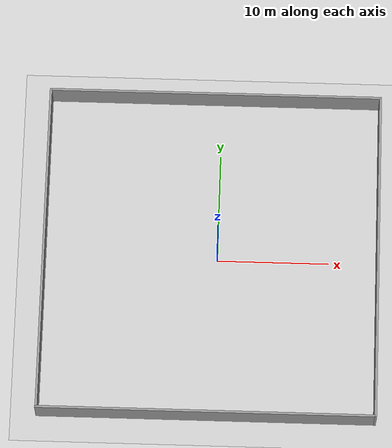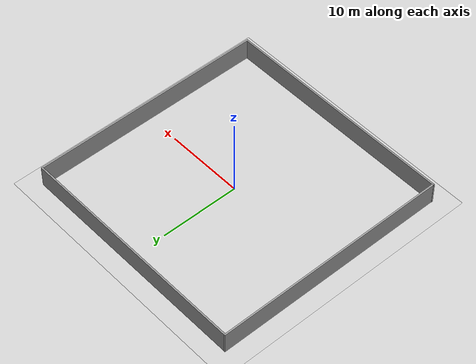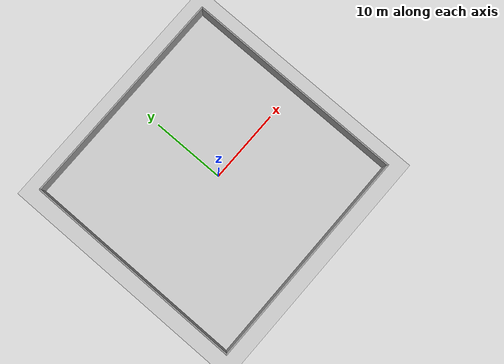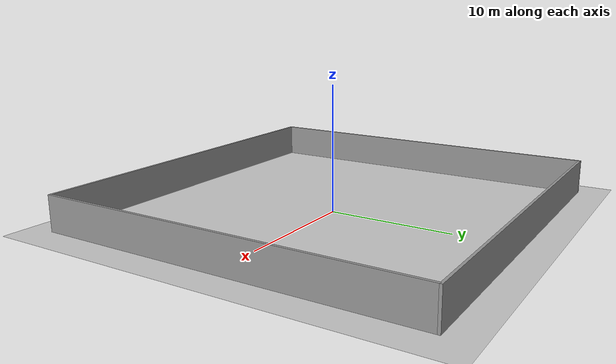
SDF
<sdf version="1.6">
 <world name="default">
  <plugin name="ActorPosePlugin" filename="libActorPosePlugin.so"/>
  <model name="ground_plane">
   <static>1</static>
   <link name="link">
    <collision name="collision">
     <geometry><plane><normal>0 0 1</normal><size>100 100</size></plane></geometry>
     <surface>
      <contact><collide_bitmask>65535</collide_bitmask></contact>
      <friction><ode><mu>100</mu><mu2>50</mu2></ode></friction>
     </surface>
    </collision>
    <visual name="visual">
     <cast_shadows>0</cast_shadows>
     <geometry><plane><normal>0 0 1</normal><size>100 100</size></plane></geometry>
     <material>
      <script><uri>file://media/materials/scripts/gazebo.material</uri><name>Gazebo/Grey</name></script>
     </material>
    </visual>
   </link>
  </model>
  <light name="sun" type="directional">
   <pose>0 0 10 0 -0 0</pose>
   <diffuse>0.8 0.8 0.8 1</diffuse>
   <specular>0.2 0.2 0.2 1</specular>
   <attenuation>
    <range>1000</range>
    <constant>0.9</constant>
    <linear>0.01</linear>
    <quadratic>0.001</quadratic>
   </attenuation>
   <direction>-0.5 0.1 -0.9</direction>
  </light>
  <model name="grey_wall_1">
   <pose>-15.2259 -14.3091 0 0 -0 0</pose>
   <static>1</static>
   <link name="link">
    <pose>14.5 -0.5 1.4 0 -0 0</pose>
    <collision name="collision"><geometry><box><size>30 0.2 2.8</size></box></geometry></collision>
    <visual name="visual">
     <cast_shadows>0</cast_shadows>
     <geometry><box><size>30 0.2 2.8</size></box></geometry>
     <material>
      <script>
       <uri>model://grey_wall/materials/scripts</uri>
       <uri>model://grey_wall/materials/textures</uri>
       <name>vrc/grey_wall</name>
      </script>
     </material>
    </visual>
   </link>
  </model>
  <model name="grey_wall_2">
   <pose>-15.0916 -14.2723 0 0 -0 0</pose>
   <static>1</static>
   <link name="link">
    <pose>-0.5 14.5 1.4 0 -0 1.57</pose>
    <collision name="collision"><geometry><box><size>30 0.2 2.8</size></box></geometry></collision>
    <visual name="visual">
     <cast_shadows>0</cast_shadows>
     <geometry><box><size>30 0.2 2.8</size></box></geometry>
     <material>
      <script>
       <uri>model://grey_wall/materials/scripts</uri>
       <uri>model://grey_wall/materials/textures</uri>
       <name>vrc/grey_wall</name>
      </script>
     </material>
    </visual>
   </link>
  </model>
  <model name="grey_wall_3">
   <pose>-15.0294 -14.3759 0 0 -0 0</pose>
   <static>1</static>
   <link name="link">
    <pose>14.5 29.5 1.4 0 -0 0</pose>
    <collision name="collision"><geometry><box><size>30 0.2 2.8</size></box></geometry></collision>
    <visual name="visual">
     <cast_shadows>0</cast_shadows>
     <geometry><box><size>30 0.2 2.8</size></box></geometry>
     <material>
      <script>
       <uri>model://grey_wall/materials/scripts</uri>
       <uri>model://grey_wall/materials/textures</uri>
       <name>vrc/grey_wall</name>
      </script>
     </material>
    </visual>
   </link>
  </model>
  <model name="grey_wall_4">
   <pose>-15.1447 -14.4099 0 0 -0 0</pose>
   <static>1</static>
   <link name="link">
    <pose>29.5 14.5 1.4 0 -0 1.57</pose>
    <collision name="collision"><geometry><box><size>30 0.2 2.8</size></box></geometry></collision>
    <visual name="visual">
     <cast_shadows>0</cast_shadows>
     <geometry><box><size>30 0.2 2.8</size></box></geometry>
     <material>
      <script>
       <uri>model://grey_wall/materials/scripts</uri>
       <uri>model://grey_wall/materials/textures</uri>
       <name>vrc/grey_wall</name>
      </script>
     </material>
    </visual>
   </link>
  </model>
  <gravity>0 0 -9.8</gravity>
  <magnetic_field>6e-06 2.3e-05 -4.2e-05</magnetic_field>
  <atmosphere type="adiabatic"/>
  <physics name="default_physics" default="0" type="ode">
   <max_step_size>0.001</max_step_size>
   <real_time_factor>1</real_time_factor>
   <real_time_update_rate>1000</real_time_update_rate>
  </physics>
  <scene><ambient>0.4 0.4 0.4 1</ambient><background>0.7 0.7 0.7 1</background><shadows>1</shadows></scene>
  <audio><device>default</device></audio>
  <spherical_coordinates>
   <surface_model>EARTH_WGS84</surface_model>
   <latitude_deg>0</latitude_deg>
   <longitude_deg>0</longitude_deg>
   <elevation>0</elevation>
   <heading_deg>0</heading_deg>
  </spherical_coordinates>
 </world>
</sdf>
